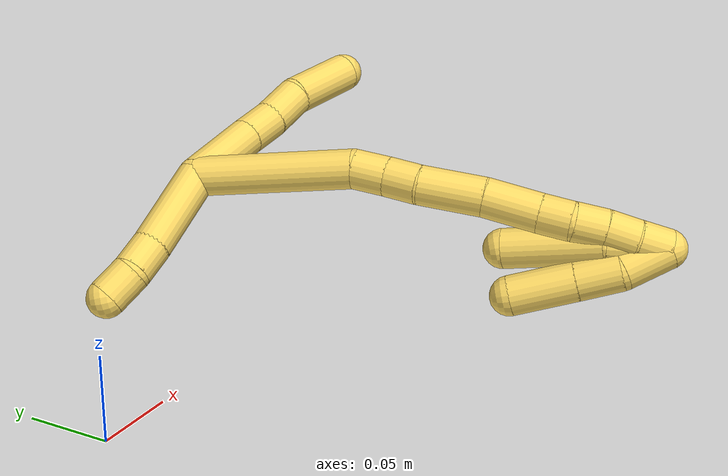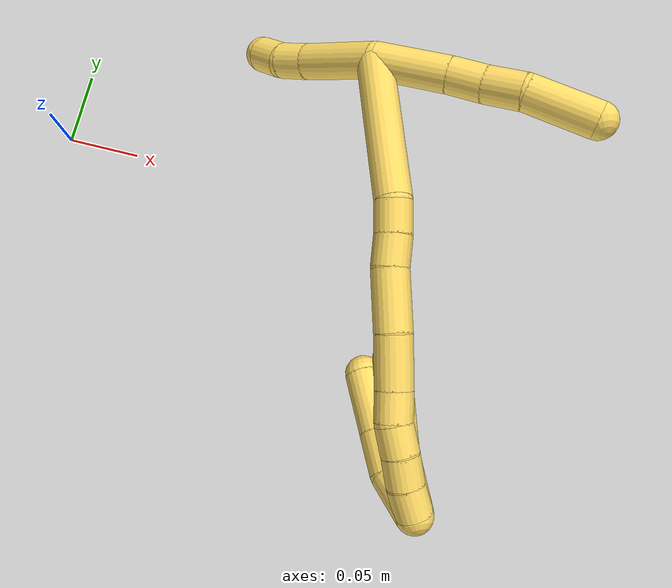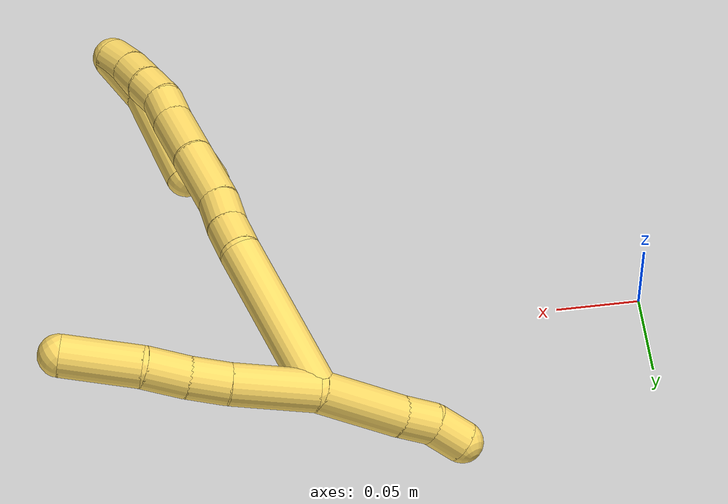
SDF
<sdf version="1.7">
 <world name="default">
  <model name="5">
   <static>0</static>
   <link name="5">
    <collision name="collision-cylinder-e_1_2_8">
     <pose>0.02026 -0.008271 0.013496 0.549827 0.907576 0.27342</pose>
     <geometry><cylinder><radius>0.0125</radius><length>0.051421</length></cylinder></geometry>
     <surface>
      <friction><ode><mu>1.16</mu><mu2>1.16</mu2><slip1>0</slip1><slip2>0</slip2></ode></friction>
      <contact><ode><kp>1e+06</kp><kd>1</kd><max_vel>0</max_vel><min_depth>0.001</min_depth></ode></contact>
     </surface>
    </collision>
    <visual name="visual-cylinder-e_1_2_8">
     <pose>0.02026 -0.008271 0.013496 0.549827 0.907576 0.27342</pose>
     <geometry><cylinder><radius>0.0125</radius><length>0.051421</length></cylinder></geometry>
     <material><ambient>1 0.858824 0.4 1</ambient></material>
    </visual>
    <collision name="collision-cylinder-e_2_8_9">
     <pose>0.049697 -0.02009 0.034209 0.456907 0.851172 0.210016</pose>
     <geometry><cylinder><radius>0.0125</radius><length>0.024403</length></cylinder></geometry>
     <surface>
      <friction><ode><mu>1.16</mu><mu2>1.16</mu2><slip1>0</slip1><slip2>0</slip2></ode></friction>
      <contact><ode><kp>1e+06</kp><kd>1</kd><max_vel>0</max_vel><min_depth>0.001</min_depth></ode></contact>
     </surface>
    </collision>
    <visual name="visual-cylinder-e_2_8_9">
     <pose>0.049697 -0.02009 0.034209 0.456907 0.851172 0.210016</pose>
     <geometry><cylinder><radius>0.0125</radius><length>0.024403</length></cylinder></geometry>
     <material><ambient>1 0.858824 0.4 1</ambient></material>
    </visual>
    <collision name="collision-cylinder-e_3_9_10">
     <pose>0.069437 -0.025913 0.049385 0.278421 0.906143 0.13622</pose>
     <geometry><cylinder><radius>0.0125</radius><length>0.026841</length></cylinder></geometry>
     <surface>
      <friction><ode><mu>1.16</mu><mu2>1.16</mu2><slip1>0</slip1><slip2>0</slip2></ode></friction>
      <contact><ode><kp>1e+06</kp><kd>1</kd><max_vel>0</max_vel><min_depth>0.001</min_depth></ode></contact>
     </surface>
    </collision>
    <visual name="visual-cylinder-e_3_9_10">
     <pose>0.069437 -0.025913 0.049385 0.278421 0.906143 0.13622</pose>
     <geometry><cylinder><radius>0.0125</radius><length>0.026841</length></cylinder></geometry>
     <material><ambient>1 0.858824 0.4 1</ambient></material>
    </visual>
    <collision name="collision-cylinder-e_4_10_6">
     <pose>0.09587 -0.037699 0.072104 0.572408 0.734905 0.225599</pose>
     <geometry><cylinder><radius>0.0125</radius><length>0.047335</length></cylinder></geometry>
     <surface>
      <friction><ode><mu>1.16</mu><mu2>1.16</mu2><slip1>0</slip1><slip2>0</slip2></ode></friction>
      <contact><ode><kp>1e+06</kp><kd>1</kd><max_vel>0</max_vel><min_depth>0.001</min_depth></ode></contact>
     </surface>
    </collision>
    <visual name="visual-cylinder-e_4_10_6">
     <pose>0.09587 -0.037699 0.072104 0.572408 0.734905 0.225599</pose>
     <geometry><cylinder><radius>0.0125</radius><length>0.047335</length></cylinder></geometry>
     <material><ambient>1 0.858824 0.4 1</ambient></material>
    </visual>
    <collision name="collision-cylinder-e_1_2_11">
     <pose>-0.024041 -0.000904 -0.014456 3.07911 -1.02856 -3.03108</pose>
     <geometry><cylinder><radius>0.0125</radius><length>0.056134</length></cylinder></geometry>
     <surface>
      <friction><ode><mu>1.16</mu><mu2>1.16</mu2><slip1>0</slip1><slip2>0</slip2></ode></friction>
      <contact><ode><kp>1e+06</kp><kd>1</kd><max_vel>0</max_vel><min_depth>0.001</min_depth></ode></contact>
     </surface>
    </collision>
    <visual name="visual-cylinder-e_1_2_11">
     <pose>-0.024041 -0.000904 -0.014456 3.07911 -1.02856 -3.03108</pose>
     <geometry><cylinder><radius>0.0125</radius><length>0.056134</length></cylinder></geometry>
     <material><ambient>1 0.858824 0.4 1</ambient></material>
    </visual>
    <collision name="collision-cylinder-e_2_11_12">
     <pose>-0.057488 -0.001099 -0.034661 -3.01881 -1.01883 2.9224</pose>
     <geometry><cylinder><radius>0.0125</radius><length>0.022093</length></cylinder></geometry>
     <surface>
      <friction><ode><mu>1.16</mu><mu2>1.16</mu2><slip1>0</slip1><slip2>0</slip2></ode></friction>
      <contact><ode><kp>1e+06</kp><kd>1</kd><max_vel>0</max_vel><min_depth>0.001</min_depth></ode></contact>
     </surface>
    </collision>
    <visual name="visual-cylinder-e_2_11_12">
     <pose>-0.057488 -0.001099 -0.034661 -3.01881 -1.01883 2.9224</pose>
     <geometry><cylinder><radius>0.0125</radius><length>0.022093</length></cylinder></geometry>
     <material><ambient>1 0.858824 0.4 1</ambient></material>
    </visual>
    <collision name="collision-cylinder-e_3_12_5">
     <pose>-0.074308 -0.00128 -0.048332 3.02968 -0.749101 -2.85852</pose>
     <geometry><cylinder><radius>0.0125</radius><length>0.021773</length></cylinder></geometry>
     <surface>
      <friction><ode><mu>1.16</mu><mu2>1.16</mu2><slip1>0</slip1><slip2>0</slip2></ode></friction>
      <contact><ode><kp>1e+06</kp><kd>1</kd><max_vel>0</max_vel><min_depth>0.001</min_depth></ode></contact>
     </surface>
    </collision>
    <visual name="visual-cylinder-e_3_12_5">
     <pose>-0.074308 -0.00128 -0.048332 3.02968 -0.749101 -2.85852</pose>
     <geometry><cylinder><radius>0.0125</radius><length>0.021773</length></cylinder></geometry>
     <material><ambient>1 0.858824 0.4 1</ambient></material>
    </visual>
    <collision name="collision-cylinder-e_1_2_13">
     <pose>-0.00752 -0.00207 0.050048 0.04133 -0.149008 -0.003085</pose>
     <geometry><cylinder><radius>0.0125</radius><length>0.101305</length></cylinder></geometry>
     <surface>
      <friction><ode><mu>1.16</mu><mu2>1.16</mu2><slip1>0</slip1><slip2>0</slip2></ode></friction>
      <contact><ode><kp>1e+06</kp><kd>1</kd><max_vel>0</max_vel><min_depth>0.001</min_depth></ode></contact>
     </surface>
    </collision>
    <visual name="visual-cylinder-e_1_2_13">
     <pose>-0.00752 -0.00207 0.050048 0.04133 -0.149008 -0.003085</pose>
     <geometry><cylinder><radius>0.0125</radius><length>0.101305</length></cylinder></geometry>
     <material><ambient>1 0.858824 0.4 1</ambient></material>
    </visual>
    <collision name="collision-cylinder-e_2_13_14">
     <pose>-0.018852 -0.006327 0.110051 0.216303 -0.358001 -0.039285</pose>
     <geometry><cylinder><radius>0.0125</radius><length>0.021764</length></cylinder></geometry>
     <surface>
      <friction><ode><mu>1.16</mu><mu2>1.16</mu2><slip1>0</slip1><slip2>0</slip2></ode></friction>
      <contact><ode><kp>1e+06</kp><kd>1</kd><max_vel>0</max_vel><min_depth>0.001</min_depth></ode></contact>
     </surface>
    </collision>
    <visual name="visual-cylinder-e_2_13_14">
     <pose>-0.018852 -0.006327 0.110051 0.216303 -0.358001 -0.039285</pose>
     <geometry><cylinder><radius>0.0125</radius><length>0.021764</length></cylinder></geometry>
     <material><ambient>1 0.858824 0.4 1</ambient></material>
    </visual>
    <collision name="collision-cylinder-e_3_14_15">
     <pose>-0.027129 -0.009963 0.129408 0.152934 -0.438669 -0.034155</pose>
     <geometry><cylinder><radius>0.0125</radius><length>0.021018</length></cylinder></geometry>
     <surface>
      <friction><ode><mu>1.16</mu><mu2>1.16</mu2><slip1>0</slip1><slip2>0</slip2></ode></friction>
      <contact><ode><kp>1e+06</kp><kd>1</kd><max_vel>0</max_vel><min_depth>0.001</min_depth></ode></contact>
     </surface>
    </collision>
    <visual name="visual-cylinder-e_3_14_15">
     <pose>-0.027129 -0.009963 0.129408 0.152934 -0.438669 -0.034155</pose>
     <geometry><cylinder><radius>0.0125</radius><length>0.021018</length></cylinder></geometry>
     <material><ambient>1 0.858824 0.4 1</ambient></material>
    </visual>
    <collision name="collision-cylinder-e_4_15_16">
     <pose>-0.037708 -0.0156 0.157813 0.216883 -0.304523 -0.033409</pose>
     <geometry><cylinder><radius>0.0125</radius><length>0.040793</length></cylinder></geometry>
     <surface>
      <friction><ode><mu>1.16</mu><mu2>1.16</mu2><slip1>0</slip1><slip2>0</slip2></ode></friction>
      <contact><ode><kp>1e+06</kp><kd>1</kd><max_vel>0</max_vel><min_depth>0.001</min_depth></ode></contact>
     </surface>
    </collision>
    <visual name="visual-cylinder-e_4_15_16">
     <pose>-0.037708 -0.0156 0.157813 0.216883 -0.304523 -0.033409</pose>
     <geometry><cylinder><radius>0.0125</radius><length>0.040793</length></cylinder></geometry>
     <material><ambient>1 0.858824 0.4 1</ambient></material>
    </visual>
    <collision name="collision-cylinder-e_5_16_17">
     <pose>-0.050135 -0.024433 0.192429 0.289241 -0.369647 -0.054442</pose>
     <geometry><cylinder><radius>0.0125</radius><length>0.034941</length></cylinder></geometry>
     <surface>
      <friction><ode><mu>1.16</mu><mu2>1.16</mu2><slip1>0</slip1><slip2>0</slip2></ode></friction>
      <contact><ode><kp>1e+06</kp><kd>1</kd><max_vel>0</max_vel><min_depth>0.001</min_depth></ode></contact>
     </surface>
    </collision>
    <visual name="visual-cylinder-e_5_16_17">
     <pose>-0.050135 -0.024433 0.192429 0.289241 -0.369647 -0.054442</pose>
     <geometry><cylinder><radius>0.0125</radius><length>0.034941</length></cylinder></geometry>
     <material><ambient>1 0.858824 0.4 1</ambient></material>
    </visual>
    <collision name="collision-cylinder-e_6_17_18">
     <pose>-0.060231 -0.031096 0.217167 0.217495 -0.384803 -0.042532</pose>
     <geometry><cylinder><radius>0.0125</radius><length>0.020162</length></cylinder></geometry>
     <surface>
      <friction><ode><mu>1.16</mu><mu2>1.16</mu2><slip1>0</slip1><slip2>0</slip2></ode></friction>
      <contact><ode><kp>1e+06</kp><kd>1</kd><max_vel>0</max_vel><min_depth>0.001</min_depth></ode></contact>
     </surface>
    </collision>
    <visual name="visual-cylinder-e_6_17_18">
     <pose>-0.060231 -0.031096 0.217167 0.217495 -0.384803 -0.042532</pose>
     <geometry><cylinder><radius>0.0125</radius><length>0.020162</length></cylinder></geometry>
     <material><ambient>1 0.858824 0.4 1</ambient></material>
    </visual>
    <collision name="collision-cylinder-e_7_18_19">
     <pose>-0.066014 -0.036974 0.235297 0.405028 -0.201163 -0.041438</pose>
     <geometry><cylinder><radius>0.0125</radius><length>0.020003</length></cylinder></geometry>
     <surface>
      <friction><ode><mu>1.16</mu><mu2>1.16</mu2><slip1>0</slip1><slip2>0</slip2></ode></friction>
      <contact><ode><kp>1e+06</kp><kd>1</kd><max_vel>0</max_vel><min_depth>0.001</min_depth></ode></contact>
     </surface>
    </collision>
    <visual name="visual-cylinder-e_7_18_19">
     <pose>-0.066014 -0.036974 0.235297 0.405028 -0.201163 -0.041438</pose>
     <geometry><cylinder><radius>0.0125</radius><length>0.020003</length></cylinder></geometry>
     <material><ambient>1 0.858824 0.4 1</ambient></material>
    </visual>
    <collision name="collision-cylinder-e_8_19_20">
     <pose>-0.070712 -0.045143 0.25292 0.463654 -0.273294 -0.064899</pose>
     <geometry><cylinder><radius>0.0125</radius><length>0.020008</length></cylinder></geometry>
     <surface>
      <friction><ode><mu>1.16</mu><mu2>1.16</mu2><slip1>0</slip1><slip2>0</slip2></ode></friction>
      <contact><ode><kp>1e+06</kp><kd>1</kd><max_vel>0</max_vel><min_depth>0.001</min_depth></ode></contact>
     </surface>
    </collision>
    <visual name="visual-cylinder-e_8_19_20">
     <pose>-0.070712 -0.045143 0.25292 0.463654 -0.273294 -0.064899</pose>
     <geometry><cylinder><radius>0.0125</radius><length>0.020008</length></cylinder></geometry>
     <material><ambient>1 0.858824 0.4 1</ambient></material>
    </visual>
    <collision name="collision-cylinder-e_9_20_1">
     <pose>-0.075172 -0.054472 0.270007 0.535028 -0.17684 -0.048586</pose>
     <geometry><cylinder><radius>0.0125</radius><length>0.020007</length></cylinder></geometry>
     <surface>
      <friction><ode><mu>1.16</mu><mu2>1.16</mu2><slip1>0</slip1><slip2>0</slip2></ode></friction>
      <contact><ode><kp>1e+06</kp><kd>1</kd><max_vel>0</max_vel><min_depth>0.001</min_depth></ode></contact>
     </surface>
    </collision>
    <visual name="visual-cylinder-e_9_20_1">
     <pose>-0.075172 -0.054472 0.270007 0.535028 -0.17684 -0.048586</pose>
     <geometry><cylinder><radius>0.0125</radius><length>0.020007</length></cylinder></geometry>
     <material><ambient>1 0.858824 0.4 1</ambient></material>
    </visual>
    <collision name="collision-cylinder-e_1_1_21">
     <pose>-0.082031 -0.059364 0.263973 -3.13269 -0.338011 3.08944</pose>
     <geometry><cylinder><radius>0.0125</radius><length>0.030752</length></cylinder></geometry>
     <surface>
      <friction><ode><mu>1.16</mu><mu2>1.16</mu2><slip1>0</slip1><slip2>0</slip2></ode></friction>
      <contact><ode><kp>1e+06</kp><kd>1</kd><max_vel>0</max_vel><min_depth>0.001</min_depth></ode></contact>
     </surface>
    </collision>
    <visual name="visual-cylinder-e_1_1_21">
     <pose>-0.082031 -0.059364 0.263973 -3.13269 -0.338011 3.08944</pose>
     <geometry><cylinder><radius>0.0125</radius><length>0.030752</length></cylinder></geometry>
     <material><ambient>1 0.858824 0.4 1</ambient></material>
    </visual>
    <collision name="collision-cylinder-e_2_21_22">
     <pose>-0.087652 -0.05966 0.235528 3.1111 -0.037383 -1.77328</pose>
     <geometry><cylinder><radius>0.0125</radius><length>0.02791</length></cylinder></geometry>
     <surface>
      <friction><ode><mu>1.16</mu><mu2>1.16</mu2><slip1>0</slip1><slip2>0</slip2></ode></friction>
      <contact><ode><kp>1e+06</kp><kd>1</kd><max_vel>0</max_vel><min_depth>0.001</min_depth></ode></contact>
     </surface>
    </collision>
    <visual name="visual-cylinder-e_2_21_22">
     <pose>-0.087652 -0.05966 0.235528 3.1111 -0.037383 -1.77328</pose>
     <geometry><cylinder><radius>0.0125</radius><length>0.02791</length></cylinder></geometry>
     <material><ambient>1 0.858824 0.4 1</ambient></material>
    </visual>
    <collision name="collision-cylinder-e_3_22_4">
     <pose>-0.088822 -0.060547 0.200936 3.11926 -0.031392 -1.9049</pose>
     <geometry><cylinder><radius>0.0125</radius><length>0.041338</length></cylinder></geometry>
     <surface>
      <friction><ode><mu>1.16</mu><mu2>1.16</mu2><slip1>0</slip1><slip2>0</slip2></ode></friction>
      <contact><ode><kp>1e+06</kp><kd>1</kd><max_vel>0</max_vel><min_depth>0.001</min_depth></ode></contact>
     </surface>
    </collision>
    <visual name="visual-cylinder-e_3_22_4">
     <pose>-0.088822 -0.060547 0.200936 3.11926 -0.031392 -1.9049</pose>
     <geometry><cylinder><radius>0.0125</radius><length>0.041338</length></cylinder></geometry>
     <material><ambient>1 0.858824 0.4 1</ambient></material>
    </visual>
    <collision name="collision-cylinder-e_1_1_23">
     <pose>-0.074611 -0.054567 0.260326 -2.8766 0.12278 -0.86426</pose>
     <geometry><cylinder><radius>0.0125</radius><length>0.037902</length></cylinder></geometry>
     <surface>
      <friction><ode><mu>1.16</mu><mu2>1.16</mu2><slip1>0</slip1><slip2>0</slip2></ode></friction>
      <contact><ode><kp>1e+06</kp><kd>1</kd><max_vel>0</max_vel><min_depth>0.001</min_depth></ode></contact>
     </surface>
    </collision>
    <visual name="visual-cylinder-e_1_1_23">
     <pose>-0.074611 -0.054567 0.260326 -2.8766 0.12278 -0.86426</pose>
     <geometry><cylinder><radius>0.0125</radius><length>0.037902</length></cylinder></geometry>
     <material><ambient>1 0.858824 0.4 1</ambient></material>
    </visual>
    <collision name="collision-cylinder-e_2_23_3">
     <pose>-0.067032 -0.04952 0.211574 -3.13763 0.170173 -3.09514</pose>
     <geometry><cylinder><radius>0.0125</radius><length>0.062098</length></cylinder></geometry>
     <surface>
      <friction><ode><mu>1.16</mu><mu2>1.16</mu2><slip1>0</slip1><slip2>0</slip2></ode></friction>
      <contact><ode><kp>1e+06</kp><kd>1</kd><max_vel>0</max_vel><min_depth>0.001</min_depth></ode></contact>
     </surface>
    </collision>
    <visual name="visual-cylinder-e_2_23_3">
     <pose>-0.067032 -0.04952 0.211574 -3.13763 0.170173 -3.09514</pose>
     <geometry><cylinder><radius>0.0125</radius><length>0.062098</length></cylinder></geometry>
     <material><ambient>1 0.858824 0.4 1</ambient></material>
    </visual>
    <collision name="collision-sphere-3">
     <pose>-0.061774 -0.049399 0.180974 0 -0 0</pose>
     <geometry><sphere><radius>0.0125</radius></sphere></geometry>
     <surface>
      <friction><ode><mu>1.16</mu><mu2>1.16</mu2><slip1>0</slip1><slip2>0</slip2></ode></friction>
      <contact><ode><kp>1e+06</kp><kd>1</kd><max_vel>0</max_vel><min_depth>0.001</min_depth></ode></contact>
     </surface>
    </collision>
    <visual name="visual-sphere-3">
     <pose>-0.061774 -0.049399 0.180974 0 -0 0</pose>
     <geometry><sphere><radius>0.0125</radius></sphere></geometry>
     <material><ambient>1 0.858824 0.4 1</ambient></material>
    </visual>
    <collision name="collision-sphere-23">
     <pose>-0.07229 -0.049641 0.242174 0 -0 0</pose>
     <geometry><sphere><radius>0.0125</radius></sphere></geometry>
     <surface>
      <friction><ode><mu>1.16</mu><mu2>1.16</mu2><slip1>0</slip1><slip2>0</slip2></ode></friction>
      <contact><ode><kp>1e+06</kp><kd>1</kd><max_vel>0</max_vel><min_depth>0.001</min_depth></ode></contact>
     </surface>
    </collision>
    <visual name="visual-sphere-23">
     <pose>-0.07229 -0.049641 0.242174 0 -0 0</pose>
     <geometry><sphere><radius>0.0125</radius></sphere></geometry>
     <material><ambient>1 0.858824 0.4 1</ambient></material>
    </visual>
    <collision name="collision-sphere-4">
     <pose>-0.089471 -0.061008 0.180283 0 -0 0</pose>
     <geometry><sphere><radius>0.0125</radius></sphere></geometry>
     <surface>
      <friction><ode><mu>1.16</mu><mu2>1.16</mu2><slip1>0</slip1><slip2>0</slip2></ode></friction>
      <contact><ode><kp>1e+06</kp><kd>1</kd><max_vel>0</max_vel><min_depth>0.001</min_depth></ode></contact>
     </surface>
    </collision>
    <visual name="visual-sphere-4">
     <pose>-0.089471 -0.061008 0.180283 0 -0 0</pose>
     <geometry><sphere><radius>0.0125</radius></sphere></geometry>
     <material><ambient>1 0.858824 0.4 1</ambient></material>
    </visual>
    <collision name="collision-sphere-22">
     <pose>-0.088173 -0.060085 0.22159 0 -0 0</pose>
     <geometry><sphere><radius>0.0125</radius></sphere></geometry>
     <surface>
      <friction><ode><mu>1.16</mu><mu2>1.16</mu2><slip1>0</slip1><slip2>0</slip2></ode></friction>
      <contact><ode><kp>1e+06</kp><kd>1</kd><max_vel>0</max_vel><min_depth>0.001</min_depth></ode></contact>
     </surface>
    </collision>
    <visual name="visual-sphere-22">
     <pose>-0.088173 -0.060085 0.22159 0 -0 0</pose>
     <geometry><sphere><radius>0.0125</radius></sphere></geometry>
     <material><ambient>1 0.858824 0.4 1</ambient></material>
    </visual>
    <collision name="collision-sphere-21">
     <pose>-0.08713 -0.059235 0.249467 0 -0 0</pose>
     <geometry><sphere><radius>0.0125</radius></sphere></geometry>
     <surface>
      <friction><ode><mu>1.16</mu><mu2>1.16</mu2><slip1>0</slip1><slip2>0</slip2></ode></friction>
      <contact><ode><kp>1e+06</kp><kd>1</kd><max_vel>0</max_vel><min_depth>0.001</min_depth></ode></contact>
     </surface>
    </collision>
    <visual name="visual-sphere-21">
     <pose>-0.08713 -0.059235 0.249467 0 -0 0</pose>
     <geometry><sphere><radius>0.0125</radius></sphere></geometry>
     <material><ambient>1 0.858824 0.4 1</ambient></material>
    </visual>
    <collision name="collision-sphere-1">
     <pose>-0.076932 -0.059493 0.278478 0 -0 0</pose>
     <geometry><sphere><radius>0.0125</radius></sphere></geometry>
     <surface>
      <friction><ode><mu>1.16</mu><mu2>1.16</mu2><slip1>0</slip1><slip2>0</slip2></ode></friction>
      <contact><ode><kp>1e+06</kp><kd>1</kd><max_vel>0</max_vel><min_depth>0.001</min_depth></ode></contact>
     </surface>
    </collision>
    <visual name="visual-sphere-1">
     <pose>-0.076932 -0.059493 0.278478 0 -0 0</pose>
     <geometry><sphere><radius>0.0125</radius></sphere></geometry>
     <material><ambient>1 0.858824 0.4 1</ambient></material>
    </visual>
    <collision name="collision-sphere-11">
     <pose>-0.048082 -0.001809 -0.028912 0 -0 0</pose>
     <geometry><sphere><radius>0.0125</radius></sphere></geometry>
     <surface>
      <friction><ode><mu>1.16</mu><mu2>1.16</mu2><slip1>0</slip1><slip2>0</slip2></ode></friction>
      <contact><ode><kp>1e+06</kp><kd>1</kd><max_vel>0</max_vel><min_depth>0.001</min_depth></ode></contact>
     </surface>
    </collision>
    <visual name="visual-sphere-11">
     <pose>-0.048082 -0.001809 -0.028912 0 -0 0</pose>
     <geometry><sphere><radius>0.0125</radius></sphere></geometry>
     <material><ambient>1 0.858824 0.4 1</ambient></material>
    </visual>
    <collision name="collision-sphere-6">
     <pose>0.111739 -0.04721 0.086863 0 -0 0</pose>
     <geometry><sphere><radius>0.0125</radius></sphere></geometry>
     <surface>
      <friction><ode><mu>1.16</mu><mu2>1.16</mu2><slip1>0</slip1><slip2>0</slip2></ode></friction>
      <contact><ode><kp>1e+06</kp><kd>1</kd><max_vel>0</max_vel><min_depth>0.001</min_depth></ode></contact>
     </surface>
    </collision>
    <visual name="visual-sphere-6">
     <pose>0.111739 -0.04721 0.086863 0 -0 0</pose>
     <geometry><sphere><radius>0.0125</radius></sphere></geometry>
     <material><ambient>1 0.858824 0.4 1</ambient></material>
    </visual>
    <collision name="collision-sphere-10">
     <pose>0.08 -0.028188 0.057344 0 -0 0</pose>
     <geometry><sphere><radius>0.0125</radius></sphere></geometry>
     <surface>
      <friction><ode><mu>1.16</mu><mu2>1.16</mu2><slip1>0</slip1><slip2>0</slip2></ode></friction>
      <contact><ode><kp>1e+06</kp><kd>1</kd><max_vel>0</max_vel><min_depth>0.001</min_depth></ode></contact>
     </surface>
    </collision>
    <visual name="visual-sphere-10">
     <pose>0.08 -0.028188 0.057344 0 -0 0</pose>
     <geometry><sphere><radius>0.0125</radius></sphere></geometry>
     <material><ambient>1 0.858824 0.4 1</ambient></material>
    </visual>
    <collision name="collision-sphere-9">
     <pose>0.058873 -0.023638 0.041426 0 -0 0</pose>
     <geometry><sphere><radius>0.0125</radius></sphere></geometry>
     <surface>
      <friction><ode><mu>1.16</mu><mu2>1.16</mu2><slip1>0</slip1><slip2>0</slip2></ode></friction>
      <contact><ode><kp>1e+06</kp><kd>1</kd><max_vel>0</max_vel><min_depth>0.001</min_depth></ode></contact>
     </surface>
    </collision>
    <visual name="visual-sphere-9">
     <pose>0.058873 -0.023638 0.041426 0 -0 0</pose>
     <geometry><sphere><radius>0.0125</radius></sphere></geometry>
     <material><ambient>1 0.858824 0.4 1</ambient></material>
    </visual>
    <collision name="collision-sphere-2">
     <geometry><sphere><radius>0.0125</radius></sphere></geometry>
     <surface>
      <friction><ode><mu>1.16</mu><mu2>1.16</mu2><slip1>0</slip1><slip2>0</slip2></ode></friction>
      <contact><ode><kp>1e+06</kp><kd>1</kd><max_vel>0</max_vel><min_depth>0.001</min_depth></ode></contact>
     </surface>
    </collision>
    <visual name="visual-sphere-2">
     <geometry><sphere><radius>0.0125</radius></sphere></geometry>
     <material><ambient>1 0.858824 0.4 1</ambient></material>
    </visual>
    <collision name="collision-sphere-19">
     <pose>-0.068012 -0.040835 0.244304 0 -0 0</pose>
     <geometry><sphere><radius>0.0125</radius></sphere></geometry>
     <surface>
      <friction><ode><mu>1.16</mu><mu2>1.16</mu2><slip1>0</slip1><slip2>0</slip2></ode></friction>
      <contact><ode><kp>1e+06</kp><kd>1</kd><max_vel>0</max_vel><min_depth>0.001</min_depth></ode></contact>
     </surface>
    </collision>
    <visual name="visual-sphere-19">
     <pose>-0.068012 -0.040835 0.244304 0 -0 0</pose>
     <geometry><sphere><radius>0.0125</radius></sphere></geometry>
     <material><ambient>1 0.858824 0.4 1</ambient></material>
    </visual>
    <collision name="collision-sphere-8">
     <pose>0.040521 -0.016543 0.026992 0 -0 0</pose>
     <geometry><sphere><radius>0.0125</radius></sphere></geometry>
     <surface>
      <friction><ode><mu>1.16</mu><mu2>1.16</mu2><slip1>0</slip1><slip2>0</slip2></ode></friction>
      <contact><ode><kp>1e+06</kp><kd>1</kd><max_vel>0</max_vel><min_depth>0.001</min_depth></ode></contact>
     </surface>
    </collision>
    <visual name="visual-sphere-8">
     <pose>0.040521 -0.016543 0.026992 0 -0 0</pose>
     <geometry><sphere><radius>0.0125</radius></sphere></geometry>
     <material><ambient>1 0.858824 0.4 1</ambient></material>
    </visual>
    <collision name="collision-sphere-12">
     <pose>-0.066894 -0.00039 -0.040409 0 -0 0</pose>
     <geometry><sphere><radius>0.0125</radius></sphere></geometry>
     <surface>
      <friction><ode><mu>1.16</mu><mu2>1.16</mu2><slip1>0</slip1><slip2>0</slip2></ode></friction>
      <contact><ode><kp>1e+06</kp><kd>1</kd><max_vel>0</max_vel><min_depth>0.001</min_depth></ode></contact>
     </surface>
    </collision>
    <visual name="visual-sphere-12">
     <pose>-0.066894 -0.00039 -0.040409 0 -0 0</pose>
     <geometry><sphere><radius>0.0125</radius></sphere></geometry>
     <material><ambient>1 0.858824 0.4 1</ambient></material>
    </visual>
    <collision name="collision-sphere-5">
     <pose>-0.081721 -0.002171 -0.056254 0 -0 0</pose>
     <geometry><sphere><radius>0.0125</radius></sphere></geometry>
     <surface>
      <friction><ode><mu>1.16</mu><mu2>1.16</mu2><slip1>0</slip1><slip2>0</slip2></ode></friction>
      <contact><ode><kp>1e+06</kp><kd>1</kd><max_vel>0</max_vel><min_depth>0.001</min_depth></ode></contact>
     </surface>
    </collision>
    <visual name="visual-sphere-5">
     <pose>-0.081721 -0.002171 -0.056254 0 -0 0</pose>
     <geometry><sphere><radius>0.0125</radius></sphere></geometry>
     <material><ambient>1 0.858824 0.4 1</ambient></material>
    </visual>
    <collision name="collision-sphere-13">
     <pose>-0.015039 -0.004139 0.100097 0 -0 0</pose>
     <geometry><sphere><radius>0.0125</radius></sphere></geometry>
     <surface>
      <friction><ode><mu>1.16</mu><mu2>1.16</mu2><slip1>0</slip1><slip2>0</slip2></ode></friction>
      <contact><ode><kp>1e+06</kp><kd>1</kd><max_vel>0</max_vel><min_depth>0.001</min_depth></ode></contact>
     </surface>
    </collision>
    <visual name="visual-sphere-13">
     <pose>-0.015039 -0.004139 0.100097 0 -0 0</pose>
     <geometry><sphere><radius>0.0125</radius></sphere></geometry>
     <material><ambient>1 0.858824 0.4 1</ambient></material>
    </visual>
    <collision name="collision-sphere-14">
     <pose>-0.022665 -0.008514 0.120005 0 -0 0</pose>
     <geometry><sphere><radius>0.0125</radius></sphere></geometry>
     <surface>
      <friction><ode><mu>1.16</mu><mu2>1.16</mu2><slip1>0</slip1><slip2>0</slip2></ode></friction>
      <contact><ode><kp>1e+06</kp><kd>1</kd><max_vel>0</max_vel><min_depth>0.001</min_depth></ode></contact>
     </surface>
    </collision>
    <visual name="visual-sphere-14">
     <pose>-0.022665 -0.008514 0.120005 0 -0 0</pose>
     <geometry><sphere><radius>0.0125</radius></sphere></geometry>
     <material><ambient>1 0.858824 0.4 1</ambient></material>
    </visual>
    <collision name="collision-sphere-15">
     <pose>-0.031592 -0.011413 0.138811 0 -0 0</pose>
     <geometry><sphere><radius>0.0125</radius></sphere></geometry>
     <surface>
      <friction><ode><mu>1.16</mu><mu2>1.16</mu2><slip1>0</slip1><slip2>0</slip2></ode></friction>
      <contact><ode><kp>1e+06</kp><kd>1</kd><max_vel>0</max_vel><min_depth>0.001</min_depth></ode></contact>
     </surface>
    </collision>
    <visual name="visual-sphere-15">
     <pose>-0.031592 -0.011413 0.138811 0 -0 0</pose>
     <geometry><sphere><radius>0.0125</radius></sphere></geometry>
     <material><ambient>1 0.858824 0.4 1</ambient></material>
    </visual>
    <collision name="collision-sphere-16">
     <pose>-0.043824 -0.019787 0.176815 0 -0 0</pose>
     <geometry><sphere><radius>0.0125</radius></sphere></geometry>
     <surface>
      <friction><ode><mu>1.16</mu><mu2>1.16</mu2><slip1>0</slip1><slip2>0</slip2></ode></friction>
      <contact><ode><kp>1e+06</kp><kd>1</kd><max_vel>0</max_vel><min_depth>0.001</min_depth></ode></contact>
     </surface>
    </collision>
    <visual name="visual-sphere-16">
     <pose>-0.043824 -0.019787 0.176815 0 -0 0</pose>
     <geometry><sphere><radius>0.0125</radius></sphere></geometry>
     <material><ambient>1 0.858824 0.4 1</ambient></material>
    </visual>
    <collision name="collision-sphere-17">
     <pose>-0.056447 -0.02908 0.208043 0 -0 0</pose>
     <geometry><sphere><radius>0.0125</radius></sphere></geometry>
     <surface>
      <friction><ode><mu>1.16</mu><mu2>1.16</mu2><slip1>0</slip1><slip2>0</slip2></ode></friction>
      <contact><ode><kp>1e+06</kp><kd>1</kd><max_vel>0</max_vel><min_depth>0.001</min_depth></ode></contact>
     </surface>
    </collision>
    <visual name="visual-sphere-17">
     <pose>-0.056447 -0.02908 0.208043 0 -0 0</pose>
     <geometry><sphere><radius>0.0125</radius></sphere></geometry>
     <material><ambient>1 0.858824 0.4 1</ambient></material>
    </visual>
    <collision name="collision-sphere-18">
     <pose>-0.064016 -0.033112 0.22629 0 -0 0</pose>
     <geometry><sphere><radius>0.0125</radius></sphere></geometry>
     <surface>
      <friction><ode><mu>1.16</mu><mu2>1.16</mu2><slip1>0</slip1><slip2>0</slip2></ode></friction>
      <contact><ode><kp>1e+06</kp><kd>1</kd><max_vel>0</max_vel><min_depth>0.001</min_depth></ode></contact>
     </surface>
    </collision>
    <visual name="visual-sphere-18">
     <pose>-0.064016 -0.033112 0.22629 0 -0 0</pose>
     <geometry><sphere><radius>0.0125</radius></sphere></geometry>
     <material><ambient>1 0.858824 0.4 1</ambient></material>
    </visual>
    <collision name="collision-sphere-20">
     <pose>-0.073413 -0.049451 0.261535 0 -0 0</pose>
     <geometry><sphere><radius>0.0125</radius></sphere></geometry>
     <surface>
      <friction><ode><mu>1.16</mu><mu2>1.16</mu2><slip1>0</slip1><slip2>0</slip2></ode></friction>
      <contact><ode><kp>1e+06</kp><kd>1</kd><max_vel>0</max_vel><min_depth>0.001</min_depth></ode></contact>
     </surface>
    </collision>
    <visual name="visual-sphere-20">
     <pose>-0.073413 -0.049451 0.261535 0 -0 0</pose>
     <geometry><sphere><radius>0.0125</radius></sphere></geometry>
     <material><ambient>1 0.858824 0.4 1</ambient></material>
    </visual>
    <inertial>
     <pose>-0.028931 -0.026722 0.12338 0 -0 0</pose>
     <mass>0.75</mass>
     <inertia><ixx>7.6e-05</ixx><ixy>0</ixy><ixz>0</ixz><iyy>0.000162</iyy><iyz>0</iyz><izz>4e-05</izz></inertia>
    </inertial>
   </link>
   <pose>0.204162 0.084444 0.065436 1.31251 -0.494351 0.578436</pose>
  </model>
 </world>
</sdf>
